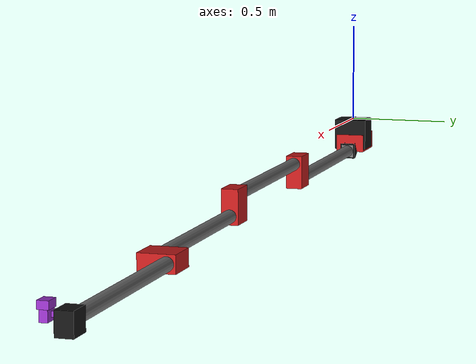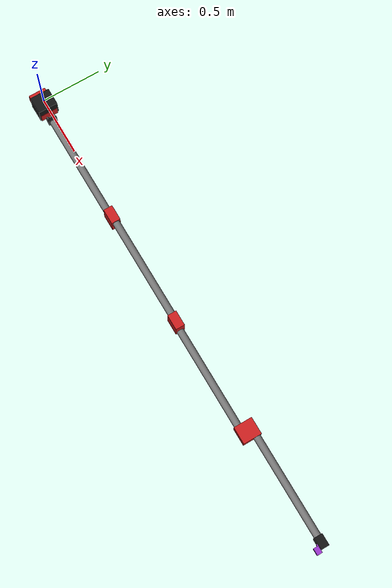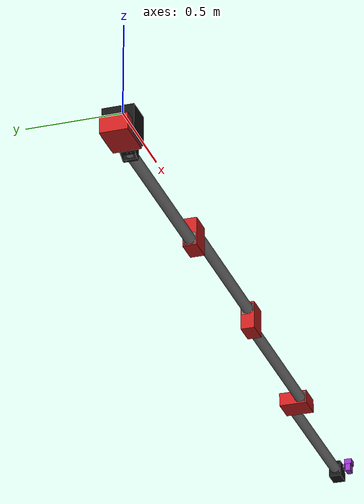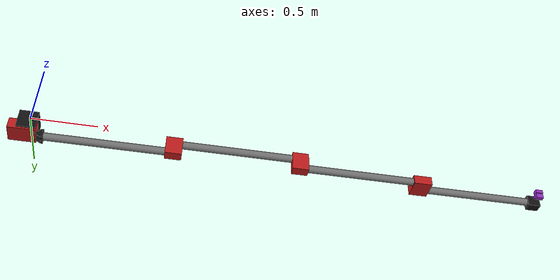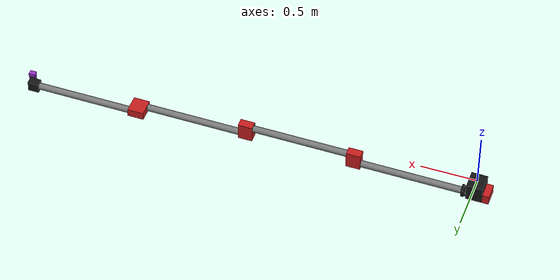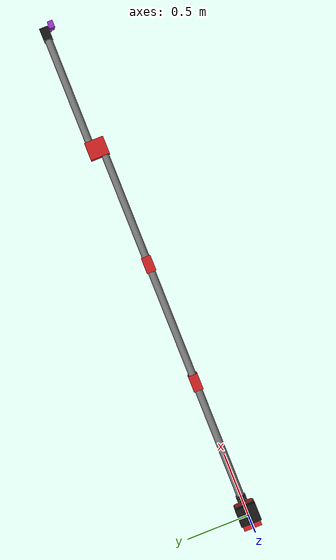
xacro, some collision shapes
<?xml version="1.0"?>
<robot name="robot_arm" xmlns:xacro="http://www.ros.org/wiki/xacro">

    <!-- ********************[ PROPERTIES ]******************** -->

    <!-- Common -->
    <xacro:property name="PI" value="3.14159265359"/>

    <!-- 2-DoF Joint (static part - "stator") -->
    <xacro:property name="d_2djnt_s_L" value="0.143"/>
    <xacro:property name="d_2djnt_s_W" value="0.165"/>
    <xacro:property name="d_2djnt_s_H" value="0.1565"/>
    <xacro:property name="m_2djnt_s" value="2.056"/>

    <!-- 2-DoF Joint (moved part - "rotor") -->
    <xacro:property name="d_2djnt_r_L" value="0.204"/>
    <xacro:property name="d_2djnt_r_W" value="0.145"/>
    <xacro:property name="d_2djnt_r_H" value="0.090"/>
    <xacro:property name="m_2djnt_r" value="1.317"/>

    <!-- 2-DoF-to-Arm Connector -->
    <xacro:property name="d_conn_arm_L" value="0.076"/>
    <xacro:property name="d_conn_arm_W" value="0.076"/>
    <xacro:property name="d_conn_arm_H" value="0.0985"/>
    <xacro:property name="m_conn" value="0.326"/>

    <!-- Arm Links -->
    <xacro:property name="d_arm_link_L" value="0.900"/>
    <xacro:property name="d_arm_link_R" value="0.030"/>
    <xacro:property name="m_arm_link" value="0.395"/>

    <!-- Arm Joints -->
    <xacro:property name="d_J12_L" value="0.12914"/>
    <xacro:property name="d_J12_W" value="0.076"/>
    <xacro:property name="d_J12_H" value="0.15705"/>
    <xacro:property name="m_J12" value="0.851"/>

    <xacro:property name="d_J3_L" value="0.14614"/>
    <xacro:property name="d_J3_W" value="0.15705"/>
    <xacro:property name="d_J3_H" value="0.076"/>
    <xacro:property name="m_J3" value="0.982"/>

    <!-- Arm Tip / Manipulator Mount -->
    <xacro:property name="d_arm_tip_L" value="0.100"/>
    <xacro:property name="d_arm_tip_W" value="0.070"/>
    <xacro:property name="d_arm_tip_H" value="0.0935"/>
    <xacro:property name="m_arm_tip" value="0.170"/>

    <!-- Manipulator Joints -->
    <xacro:property name="d_MJ1_L" value="0.0405"/>
    <xacro:property name="d_MJ1_W" value="0.0405"/>
    <xacro:property name="d_MJ1_H" value="0.020"/>

    <xacro:property name="d_MJ23_L" value="0.058"/>
    <xacro:property name="d_MJ23_W" value="0.0307"/>
    <xacro:property name="d_MJ23_H" value="0.0436"/>

    <xacro:property name="m_MJ" value="0.039"/>

    <!-- ********************[ MATERIALS ]******************** -->

    <material name="red">
        <color rgba="${200/255} ${30/255} ${30/255} 1"/>
    </material>
    <material name="gray">
        <color rgba="${120/255} ${120/255} ${120/255} 1"/>
    </material>
    <material name="black">
        <color rgba="${20/255} ${20/255} ${20/255} 1"/>
    </material>
    <material name="purple">
        <color rgba="${150/255} ${50/255} ${200/255} 1"/>
    </material>

    <!-- ********************[ MACROS ]******************** -->

    <xacro:macro name="box_inertia" params="m x y z">
        <inertial>
            <mass value="${m}"/>
            <inertia ixx="${(m/12) * (y*y + z*z)}" ixy="0.0" ixz="0.0"
                     iyy="${(m/12) * (x*x + z*z)}" iyz="0.0"
                     izz="${(m/12) * (x*x + y*y)}"/>
        </inertial>
    </xacro:macro>

    <xacro:macro name="cylinder_inertia" params="m r h">
        <inertial>
            <mass value="${m}"/>
            <inertia ixx="${(m/12) * (3*r*r + h*h)}" ixy = "0" ixz = "0"
                     iyy="${(m/12) * (3*r*r + h*h)}" iyz = "0"
                     izz="${(m/2) * (r*r)}"/>
        </inertial>
    </xacro:macro>

    <xacro:macro name="arm_link_macro" params="name">
        <link name="${name}">
            <visual>
                <origin xyz="0 0 0" rpy="0 ${PI/2} ${PI/2}"/>
                <geometry>
                    <mesh filename="package://libra/meshes/arm-link.stl" scale="0.001 0.001 0.001"/>
                </geometry>
                <material name="gray"/>
            </visual>
            <collision>
                <origin xyz="0 0 0" rpy="0 ${PI/2} 0"/>
                <geometry>
                    <cylinder length="${d_arm_link_L}" radius="${d_arm_link_R}"/>
                </geometry>
            </collision>
            <xacro:cylinder_inertia m="${m_arm_link}" r="${d_arm_link_R}" h="${d_arm_link_L}"/>
        </link>
    </xacro:macro>

    <xacro:macro name="arm_joint_macro" params="name L W H mass">
        <link name="${name}">
            <visual>
                <origin xyz="0 0 0" rpy="0 0 0"/>
                <geometry>
                    <box size="${L} ${W} ${H}"/>
                </geometry>
                <material name="red"/>
            </visual>
            <collision>
                <origin xyz="0 0 0" rpy="0 0 0"/>
                <geometry>
                    <box size="${L} ${W} ${H}"/>
                </geometry>
            </collision>
            <xacro:box_inertia m="${mass}" x="${L}" y="${W}" z="${H}"/>
        </link>
    </xacro:macro>

    <!-- ********************[ LINKS ]******************** -->

    <!-- Base Link -->
    <link name="base_link"/>

    ---

    <!-- 2-DoF Joint (stator half) -->
    <link name="2d_stator_link">
        <visual>
            <origin xyz="-0.029 0 -0.042" rpy="${PI/2} 0 ${PI/2}"/>
            <geometry>
                <mesh filename="package://libra/meshes/2d-stator.stl" scale="0.001 0.001 0.001"/>
            </geometry>
            <material name="black"/>
        </visual>
        <collision>
            <origin xyz="0 0 0" rpy="0 0 0"/>
            <geometry>
                <box size="${d_2djnt_s_L} ${d_2djnt_s_W} ${d_2djnt_s_H}"/>
            </geometry>
        </collision>
        <xacro:box_inertia m="${m_2djnt_s}" x="${d_2djnt_s_L}" y="${d_2djnt_s_W}" z="${d_2djnt_s_H}"/>
    </link>

    <joint name="base_to_2d" type="fixed">
        <parent link="base_link"/>
        <child link="2d_stator_link"/>
        <origin xyz="0 0 -${d_2djnt_s_H/2}" rpy="0 0 0"/>
    </joint>

    ---

    <!-- 2-DoF Joint (rotor half) -->
    <link name="2d_rotor_pitch_link"/>
    <joint name="2d_pitch_joint" type="revolute">
        <parent link="2d_stator_link"/>
        <child link="2d_rotor_pitch_link"/>
        <origin xyz="${-d_2djnt_s_L/2 - 0.059 + d_2djnt_r_L/2} 0 ${d_2djnt_s_H/2 - 0.080 - d_2djnt_r_H/2}" rpy="0 0 0"/>
        <axis xyz="0 1 0"/>
        <limit lower="-${PI/2}" upper="${PI/2}" effort="100" velocity="1.0"/>
    </joint>

    <link name="2d_rotor_roll_link">
        <visual>
            <origin xyz="0 0 0.0050" rpy="-${PI/2} ${PI} -${PI/2}"/>
            <geometry>
                <mesh filename="package://libra/meshes/2d-rotor.stl" scale="0.001 0.001 0.001"/>
            </geometry>
            <material name="red"/>
        </visual>
        <collision>
            <origin xyz="0 0 0" rpy="0 0 0"/>
            <geometry>
                <box size="${d_2djnt_r_L} ${d_2djnt_r_W} ${d_2djnt_r_H}"/>
            </geometry>
        </collision>
        <xacro:box_inertia m="${m_2djnt_r}" x="${d_2djnt_r_L}" y="${d_2djnt_r_W}" z="${d_2djnt_r_H}"/>
    </link>
    <joint name="2d_roll_joint" type="revolute">
        <parent link="2d_rotor_pitch_link"/>
        <child link="2d_rotor_roll_link"/>
        <origin xyz="0 0 0" rpy="0 0 0"/>
        <axis xyz="1 0 0"/>
        <limit lower="-${PI/2}" upper="${PI/2}" effort="100" velocity="1.0"/>
    </joint>

    ---

    <!-- 2-DoF-to-Arm Connector -->
    <link name="2d_arm_connector_link">
        <visual>
            <origin xyz="0.0030 0 0.0267" rpy="${PI} 0 0"/>
            <geometry>
                <mesh filename="package://libra/meshes/2d-arm_connector.stl" scale="0.001 0.001 0.001"/>
            </geometry>
            <material name="black"/>
        </visual>
        <collision>
            <origin xyz="0 0 0" rpy="0 0 0"/>
            <geometry>
                <box size="${d_conn_arm_L} ${d_conn_arm_W} ${d_conn_arm_H}"/>
            </geometry>
        </collision>
        <xacro:box_inertia m="${m_conn}" x="${d_conn_arm_L}" y="${d_conn_arm_W}" z="${d_conn_arm_H}"/>
    </link>
    <joint name="2d_stator_to_2d_arm_connector" type="fixed">
        <parent link="2d_rotor_roll_link"/>
        <child link="2d_arm_connector_link"/>
        <origin xyz="${(d_2djnt_r_L/2 - 0.022) + d_conn_arm_L/2} 0 ${d_2djnt_r_H/2 - 0.020 - d_conn_arm_H/2}" rpy="0 0 0"/>
    </joint>

    ---

    <!-- TODO
            Arm joints should be divided into stator/rotor pairs like the 2-DoF Joint.
    -->

    <!-- Arm Segment #1 -->
    <xacro:arm_link_macro name="L1_link"/>
    <joint name="2d_arm_connector_to_L1" type="fixed">
        <parent link="2d_arm_connector_link"/>
        <child link="L1_link"/>
        <origin xyz="${d_conn_arm_L/2 + d_arm_link_L/2} 0 -${d_conn_arm_H/2 - 0.038}" rpy="0 0 0"/>
    </joint>

    <xacro:arm_joint_macro name="J1_link" L="${d_J12_L}" W="${d_J12_W}" H="${d_J12_H}" mass="${m_J12}"/>
    <joint name="L1_to_J1" type="revolute">
        <parent link="L1_link"/>
        <child link="J1_link"/>
        <origin xyz="${d_arm_link_L/2 + d_J12_L/2} 0 ${-0.038 + d_J12_H/2}" rpy="0 0 0"/>
        <axis xyz="0 0 1"/>
        <limit lower="-${PI}" upper="${PI}" effort="100" velocity="1.0"/>
    </joint>

    ---

    <!-- Arm Segment #2 -->
    <xacro:arm_link_macro name="L2_link"/>
    <joint name="J1_to_L2" type="fixed">
        <parent link="J1_link"/>
        <child link="L2_link"/>
        <origin xyz="${(d_J12_L/2 - 0.04014) + d_arm_link_L/2} 0 ${d_J12_H/2 - 0.038}" rpy="0 0 0"/>
    </joint>

    <xacro:arm_joint_macro name="J2_link" L="${d_J12_L}" W="${d_J12_W}" H="${d_J12_H}" mass="${m_J12}"/>
    <joint name="L2_to_J2" type="revolute">
        <parent link="L2_link"/>
        <child link="J2_link"/>
        <origin xyz="${d_arm_link_L/2 + d_J12_L/2} 0 ${0.038 - d_J12_H/2}" rpy="0 0 0"/>
        <axis xyz="0 0 1"/>
        <limit lower="-${PI}" upper="${PI}" effort="100" velocity="1.0"/>
    </joint>

    ---

    <!-- Arm Segment #3 -->
    <xacro:arm_link_macro name="L3_link"/>
    <joint name="J2_to_L3" type="fixed">
        <parent link="J2_link"/>
        <child link="L3_link"/>
        <origin xyz="${(d_J12_L/2 - 0.04014) + d_arm_link_L/2} 0 ${-d_J12_H/2 + 0.038}" rpy="0 0 0"/>
    </joint>

    <xacro:arm_joint_macro name="J3_link" L="${d_J3_L}" W="${d_J3_W}" H="${d_J3_H}" mass="${m_J3}"/>
    <joint name="L3_to_J3" type="revolute">
        <parent link="L3_link"/>
        <child link="J3_link"/>
        <origin xyz="${d_arm_link_L/2 + d_J3_L/2} ${-0.03805 + d_J3_W/2} 0" rpy="0 0 0"/>
        <axis xyz="0 1 0"/>
        <limit lower="-${PI/2}" upper="${PI/2}" effort="100" velocity="1.0"/>
    </joint>

    ---

    <!-- Arm Segment #4 -->
    <xacro:arm_link_macro name="L4_link"/>
    <joint name="J3_to_L4" type="fixed">
        <parent link="J3_link"/>
        <child link="L4_link"/>
        <origin xyz="${(d_J3_L/2 - 0.04014) + d_arm_link_L/2} ${d_J3_W/2 - 0.038} 0" rpy="0 0 0"/>
    </joint>

    <link name="arm_tip_link">
        <visual>
            <origin xyz="0 0 0" rpy="0 0 0"/>
            <geometry>
                <box size="${d_arm_tip_L} ${d_arm_tip_W} ${d_arm_tip_H}"/>
            </geometry>
            <material name="black"/>
        </visual>
        <collision>
            <origin xyz="0 0 0" rpy="0 0 0"/>
            <geometry>
                <box size="${d_arm_tip_L} ${d_arm_tip_W} ${d_arm_tip_H}"/>
            </geometry>
        </collision>
        <xacro:box_inertia m="${m_arm_tip}" x="${d_arm_tip_L}" y="${d_arm_tip_W}" z="${d_arm_tip_H}"/>
    </link>
    <joint name="L4_to_arm_tip" type="fixed">
        <parent link="L4_link"/>
        <child link="arm_tip_link"/>
        <origin xyz="${d_arm_link_L/2 + d_arm_tip_L/2} 0 ${0.042 - d_arm_tip_H/2}" rpy="0 0 0"/>
    </joint>

    ---

    <!-- Manipulator Joints -->
    <link name="mj1_link">
        <visual>
            <origin xyz="0 0 0" rpy="0 0 0"/>
            <geometry>
                <box size="${d_MJ1_L} ${d_MJ1_W} ${d_MJ1_H}"/>
            </geometry>
            <material name="purple"/>
        </visual>
        <collision>
            <origin xyz="0 0 0" rpy="0 0 0"/>
            <geometry>
                <box size="${d_MJ1_L} ${d_MJ1_W} ${d_MJ1_H}"/>
            </geometry>
        </collision>
        <xacro:box_inertia m="${m_MJ}" x="${d_MJ1_L}" y="${d_MJ1_W}" z="${d_MJ1_H}"/>
    </link>
    <joint name="arm_tip_to_MJ1" type="revolute">
        <parent link="arm_tip_link"/>
        <child link="mj1_link"/>
        <origin xyz="${(d_arm_tip_L/2 - 0.00875) - d_MJ1_L/2} ${-d_arm_tip_W/2 - 0.0121 + d_MJ1_W/2} ${(d_arm_tip_H/2 - 0.006) - d_MJ1_H/2}" rpy="0 0 0"/>
        <axis xyz="0 1 0"/>
        <limit lower="-${PI/2}" upper="${PI/2}" effort="50" velocity="1.5"/>
    </joint>

    <link name="mj2_link">
        <visual>
            <origin xyz="0 0 0" rpy="0 0 0"/>
            <geometry>
                <box size="${d_MJ23_L} ${d_MJ23_W} ${d_MJ23_H}"/>
            </geometry>
            <material name="purple"/>
        </visual>
        <collision>
            <origin xyz="0 0 0" rpy="0 0 0"/>
            <geometry>
                <box size="${d_MJ23_L} ${d_MJ23_W} ${d_MJ23_H}"/>
            </geometry>
        </collision>
        <xacro:box_inertia m="${m_MJ}" x="${d_MJ23_L}" y="${d_MJ23_W}" z="${d_MJ23_H}"/>
    </link>
    <joint name="mj1_to_MJ2" type="revolute">
        <parent link="mj1_link"/>
        <child link="mj2_link"/>
        <origin xyz="${(d_MJ1_L/2 + 0.0295) - d_MJ23_L/2} ${-d_MJ1_W/2 - d_MJ23_W/2} ${(d_MJ1_H/2 + 0.0091) - d_MJ23_H/2}" rpy="0 0 0"/>
        <axis xyz="0 0 1"/>
        <limit lower="-${PI/2}" upper="${PI/2}" effort="50" velocity="1.5"/>
    </joint>

    <link name="mj3_link">
        <visual>
            <origin xyz="0 0 0" rpy="0 0 0"/>
            <geometry>
                <box size="${d_MJ23_L} ${d_MJ23_H} ${d_MJ23_W}"/>
            </geometry>
            <material name="purple"/>
        </visual>
        <collision>
            <origin xyz="0 0 0" rpy="0 0 0"/>
            <geometry>
                <box size="${d_MJ23_L} ${d_MJ23_H} ${d_MJ23_W}"/>
            </geometry>
        </collision>
        <xacro:box_inertia m="${m_MJ}" x="${d_MJ23_L}" y="${d_MJ23_H}" z="${d_MJ23_W}"/>
    </link>
    <joint name="mj2_to_mj3" type="revolute">
        <parent link="mj2_link"/>
        <child link="mj3_link"/>
        <origin xyz="${(-d_MJ23_L/2 + 0.00025) + d_MJ23_L/2} ${d_MJ23_W/2 + 0.0053 - d_MJ23_H/2} ${d_MJ23_H/2 + d_MJ23_W/2}" rpy="0 0 0"/>
        <axis xyz="0 1 0"/>
        <limit lower="-${PI/2}" upper="${PI/2}" effort="50" velocity="1.5"/>
    </joint>

    <!-- ********************[ GAZEBO CONFIG ]******************** -->

    <gazebo reference="2d_stator_link"><material>Gazebo/Black</material></gazebo>
    <gazebo reference="2d_rotor_roll_link"><material>Gazebo/Red</material></gazebo>
    <gazebo reference="2d_arm_connector_link"><material>Gazebo/Black</material></gazebo>
    <gazebo reference="L1_link"><material>Gazebo/Gray</material></gazebo>
    <gazebo reference="J1_link"><material>Gazebo/Red</material></gazebo>
    <gazebo reference="L2_link"><material>Gazebo/Gray</material></gazebo>
    <gazebo reference="J2_link"><material>Gazebo/Red</material></gazebo>
    <gazebo reference="L3_link"><material>Gazebo/Gray</material></gazebo>
    <gazebo reference="J3_link"><material>Gazebo/Red</material></gazebo>
    <gazebo reference="L4_link"><material>Gazebo/Gray</material></gazebo>
    <gazebo reference="arm_tip_link"><material>Gazebo/Black</material></gazebo>
    <gazebo reference="mj1_link"><material>Gazebo/Purple</material></gazebo>
    <gazebo reference="mj2_link"><material>Gazebo/Purple</material></gazebo>
    <gazebo reference="mj3_link"><material>Gazebo/Purple</material></gazebo>

</robot>
